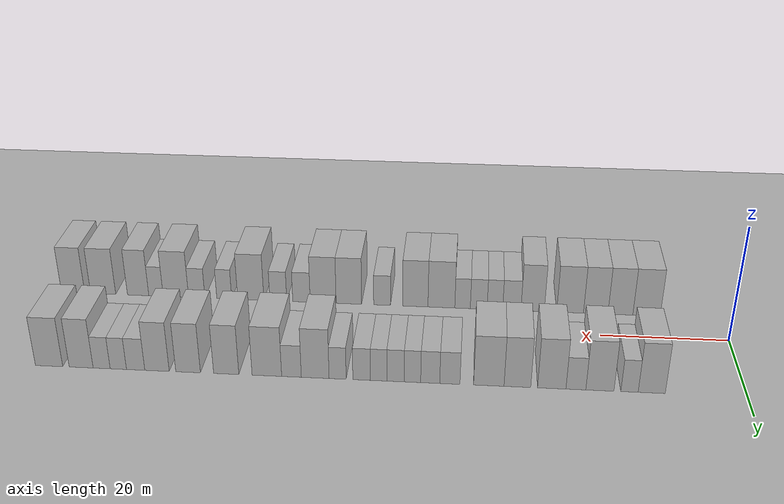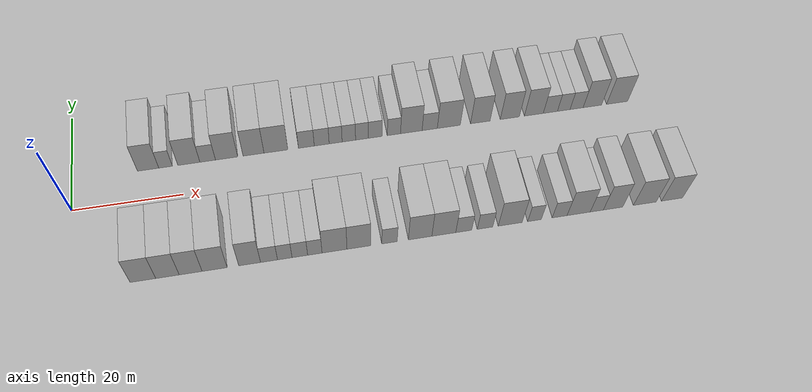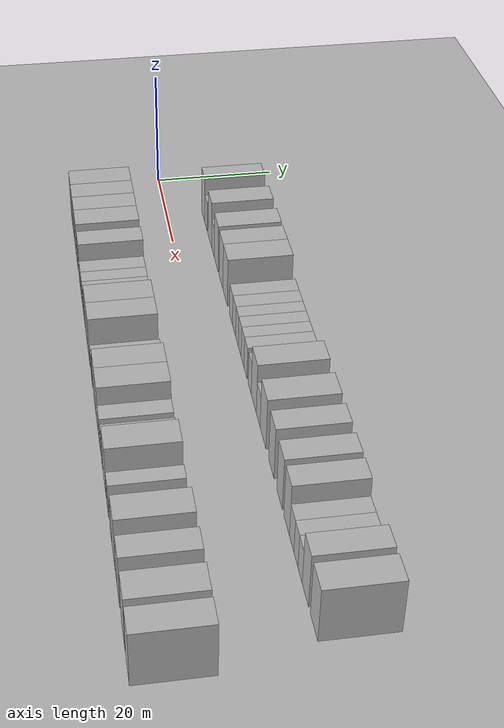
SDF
<sdf version="1.6">
 <world name="default">
  <include><name>ground_plane_1</name><uri>model://HANNAS_ground_plane</uri></include>
  <include>
   <name>ground_plane_2</name>
   <uri>model://HANNAS_ground_plane</uri>
   <pose>100 0 0  0 0 0</pose>
  </include>
  <model name="building_1">
   <static>1</static>
   <pose>13.9510 11.0000 0 0.000000 0.000000 1.570796</pose>
   <link name="link">
    <pose>0 0 4.50 0 0 0</pose>
    <collision name="collision"><geometry><box><size>10.0000 3.9020 9.0000</size></box></geometry></collision>
    <visual name="visual">
     <cast_shadows>0</cast_shadows>
     <geometry><box><size>10.0000 3.9020 9.0000</size></box></geometry>
     <material>
      <script>
       <uri>model://HANNAS_wall/materials/scripts</uri>
       <uri>model://HANNAS_wall/materials/textures</uri>
       <name>vrc/HANNAS_wall</name>
      </script>
     </material>
    </visual>
   </link>
  </model>
  <model name="building_2">
   <static>1</static>
   <pose>17.1490 11.0000 0 0.000000 0.000000 1.570796</pose>
   <link name="link">
    <pose>0 0 3.00 0 0 0</pose>
    <collision name="collision"><geometry><box><size>10.0000 2.4941 6.0000</size></box></geometry></collision>
    <visual name="visual">
     <cast_shadows>0</cast_shadows>
     <geometry><box><size>10.0000 2.4941 6.0000</size></box></geometry>
     <material>
      <script>
       <uri>model://HANNAS_wall/materials/scripts</uri>
       <uri>model://HANNAS_wall/materials/textures</uri>
       <name>vrc/HANNAS_wall</name>
      </script>
     </material>
    </visual>
   </link>
  </model>
  <model name="building_3">
   <static>1</static>
   <pose>21.4325 11.0000 0 0.000000 0.000000 1.570796</pose>
   <link name="link">
    <pose>0 0 4.50 0 0 0</pose>
    <collision name="collision"><geometry><box><size>10.0000 4.0729 9.0000</size></box></geometry></collision>
    <visual name="visual">
     <cast_shadows>0</cast_shadows>
     <geometry><box><size>10.0000 4.0729 9.0000</size></box></geometry>
     <material>
      <script>
       <uri>model://HANNAS_wall/materials/scripts</uri>
       <uri>model://HANNAS_wall/materials/textures</uri>
       <name>vrc/HANNAS_wall</name>
      </script>
     </material>
    </visual>
   </link>
  </model>
  <model name="building_4">
   <static>1</static>
   <pose>24.9111 11.0000 0 0.000000 0.000000 1.570796</pose>
   <link name="link">
    <pose>0 0 3.00 0 0 0</pose>
    <collision name="collision"><geometry><box><size>10.0000 2.8844 6.0000</size></box></geometry></collision>
    <visual name="visual">
     <cast_shadows>0</cast_shadows>
     <geometry><box><size>10.0000 2.8844 6.0000</size></box></geometry>
     <material>
      <script>
       <uri>model://HANNAS_wall/materials/scripts</uri>
       <uri>model://HANNAS_wall/materials/textures</uri>
       <name>vrc/HANNAS_wall</name>
      </script>
     </material>
    </visual>
   </link>
  </model>
  <model name="building_5">
   <static>1</static>
   <pose>28.4173 11.0000 0 0.000000 0.000000 1.570796</pose>
   <link name="link">
    <pose>0 0 4.50 0 0 0</pose>
    <collision name="collision"><geometry><box><size>10.0000 4.1281 9.0000</size></box></geometry></collision>
    <visual name="visual">
     <cast_shadows>0</cast_shadows>
     <geometry><box><size>10.0000 4.1281 9.0000</size></box></geometry>
     <material>
      <script>
       <uri>model://HANNAS_wall/materials/scripts</uri>
       <uri>model://HANNAS_wall/materials/textures</uri>
       <name>vrc/HANNAS_wall</name>
      </script>
     </material>
    </visual>
   </link>
  </model>
  <model name="building_6">
   <static>1</static>
   <pose>33.4345 11.0000 0 0.000000 0.000000 1.570796</pose>
   <link name="link">
    <pose>0 0 4.50 0 0 0</pose>
    <collision name="collision"><geometry><box><size>10.0000 3.9062 9.0000</size></box></geometry></collision>
    <visual name="visual">
     <cast_shadows>0</cast_shadows>
     <geometry><box><size>10.0000 3.9062 9.0000</size></box></geometry>
     <material>
      <script>
       <uri>model://HANNAS_wall/materials/scripts</uri>
       <uri>model://HANNAS_wall/materials/textures</uri>
       <name>vrc/HANNAS_wall</name>
      </script>
     </material>
    </visual>
   </link>
  </model>
  <model name="building_7">
   <static>1</static>
   <pose>37.6217 11.0000 0 0.000000 0.000000 1.570796</pose>
   <link name="link">
    <pose>0 0 4.50 0 0 0</pose>
    <collision name="collision"><geometry><box><size>10.0000 4.4682 9.0000</size></box></geometry></collision>
    <visual name="visual">
     <cast_shadows>0</cast_shadows>
     <geometry><box><size>10.0000 4.4682 9.0000</size></box></geometry>
     <material>
      <script>
       <uri>model://HANNAS_wall/materials/scripts</uri>
       <uri>model://HANNAS_wall/materials/textures</uri>
       <name>vrc/HANNAS_wall</name>
      </script>
     </material>
    </visual>
   </link>
  </model>
  <model name="building_8">
   <static>1</static>
   <pose>43.3466 11.0000 0 0.000000 0.000000 1.570796</pose>
   <link name="link">
    <pose>0 0 3.00 0 0 0</pose>
    <collision name="collision"><geometry><box><size>10.0000 2.9816 6.0000</size></box></geometry></collision>
    <visual name="visual">
     <cast_shadows>0</cast_shadows>
     <geometry><box><size>10.0000 2.9816 6.0000</size></box></geometry>
     <material>
      <script>
       <uri>model://HANNAS_wall/materials/scripts</uri>
       <uri>model://HANNAS_wall/materials/textures</uri>
       <name>vrc/HANNAS_wall</name>
      </script>
     </material>
    </visual>
   </link>
  </model>
  <model name="building_9">
   <static>1</static>
   <pose>46.2434 11.0000 0 0.000000 0.000000 1.570796</pose>
   <link name="link">
    <pose>0 0 3.00 0 0 0</pose>
    <collision name="collision"><geometry><box><size>10.0000 2.8121 6.0000</size></box></geometry></collision>
    <visual name="visual">
     <cast_shadows>0</cast_shadows>
     <geometry><box><size>10.0000 2.8121 6.0000</size></box></geometry>
     <material>
      <script>
       <uri>model://HANNAS_wall/materials/scripts</uri>
       <uri>model://HANNAS_wall/materials/textures</uri>
       <name>vrc/HANNAS_wall</name>
      </script>
     </material>
    </visual>
   </link>
  </model>
  <model name="building_10">
   <static>1</static>
   <pose>48.8798 11.0000 0 0.000000 0.000000 1.570796</pose>
   <link name="link">
    <pose>0 0 3.00 0 0 0</pose>
    <collision name="collision"><geometry><box><size>10.0000 2.4606 6.0000</size></box></geometry></collision>
    <visual name="visual">
     <cast_shadows>0</cast_shadows>
     <geometry><box><size>10.0000 2.4606 6.0000</size></box></geometry>
     <material>
      <script>
       <uri>model://HANNAS_wall/materials/scripts</uri>
       <uri>model://HANNAS_wall/materials/textures</uri>
       <name>vrc/HANNAS_wall</name>
      </script>
     </material>
    </visual>
   </link>
  </model>
  <model name="building_11">
   <static>1</static>
   <pose>51.3890 11.0000 0 0.000000 0.000000 1.570796</pose>
   <link name="link">
    <pose>0 0 3.00 0 0 0</pose>
    <collision name="collision"><geometry><box><size>10.0000 2.5578 6.0000</size></box></geometry></collision>
    <visual name="visual">
     <cast_shadows>0</cast_shadows>
     <geometry><box><size>10.0000 2.5578 6.0000</size></box></geometry>
     <material>
      <script>
       <uri>model://HANNAS_wall/materials/scripts</uri>
       <uri>model://HANNAS_wall/materials/textures</uri>
       <name>vrc/HANNAS_wall</name>
      </script>
     </material>
    </visual>
   </link>
  </model>
  <model name="building_12">
   <static>1</static>
   <pose>53.8851 11.0000 0 0.000000 0.000000 1.570796</pose>
   <link name="link">
    <pose>0 0 3.00 0 0 0</pose>
    <collision name="collision"><geometry><box><size>10.0000 2.4345 6.0000</size></box></geometry></collision>
    <visual name="visual">
     <cast_shadows>0</cast_shadows>
     <geometry><box><size>10.0000 2.4345 6.0000</size></box></geometry>
     <material>
      <script>
       <uri>model://HANNAS_wall/materials/scripts</uri>
       <uri>model://HANNAS_wall/materials/textures</uri>
       <name>vrc/HANNAS_wall</name>
      </script>
     </material>
    </visual>
   </link>
  </model>
  <model name="building_13">
   <static>1</static>
   <pose>56.4099 11.0000 0 0.000000 0.000000 1.570796</pose>
   <link name="link">
    <pose>0 0 3.00 0 0 0</pose>
    <collision name="collision"><geometry><box><size>10.0000 2.6151 6.0000</size></box></geometry></collision>
    <visual name="visual">
     <cast_shadows>0</cast_shadows>
     <geometry><box><size>10.0000 2.6151 6.0000</size></box></geometry>
     <material>
      <script>
       <uri>model://HANNAS_wall/materials/scripts</uri>
       <uri>model://HANNAS_wall/materials/textures</uri>
       <name>vrc/HANNAS_wall</name>
      </script>
     </material>
    </visual>
   </link>
  </model>
  <model name="building_14">
   <static>1</static>
   <pose>59.9889 11.0000 0 0.000000 0.000000 1.570796</pose>
   <link name="link">
    <pose>0 0 3.00 0 0 0</pose>
    <collision name="collision"><geometry><box><size>10.0000 2.5429 6.0000</size></box></geometry></collision>
    <visual name="visual">
     <cast_shadows>0</cast_shadows>
     <geometry><box><size>10.0000 2.5429 6.0000</size></box></geometry>
     <material>
      <script>
       <uri>model://HANNAS_wall/materials/scripts</uri>
       <uri>model://HANNAS_wall/materials/textures</uri>
       <name>vrc/HANNAS_wall</name>
      </script>
     </material>
    </visual>
   </link>
  </model>
  <model name="building_15">
   <static>1</static>
   <pose>63.3386 11.0000 0 0.000000 0.000000 1.570796</pose>
   <link name="link">
    <pose>0 0 4.50 0 0 0</pose>
    <collision name="collision"><geometry><box><size>10.0000 4.1566 9.0000</size></box></geometry></collision>
    <visual name="visual">
     <cast_shadows>0</cast_shadows>
     <geometry><box><size>10.0000 4.1566 9.0000</size></box></geometry>
     <material>
      <script>
       <uri>model://HANNAS_wall/materials/scripts</uri>
       <uri>model://HANNAS_wall/materials/textures</uri>
       <name>vrc/HANNAS_wall</name>
      </script>
     </material>
    </visual>
   </link>
  </model>
  <model name="building_16">
   <static>1</static>
   <pose>66.8907 11.0000 0 0.000000 0.000000 1.570796</pose>
   <link name="link">
    <pose>0 0 3.00 0 0 0</pose>
    <collision name="collision"><geometry><box><size>10.0000 2.9475 6.0000</size></box></geometry></collision>
    <visual name="visual">
     <cast_shadows>0</cast_shadows>
     <geometry><box><size>10.0000 2.9475 6.0000</size></box></geometry>
     <material>
      <script>
       <uri>model://HANNAS_wall/materials/scripts</uri>
       <uri>model://HANNAS_wall/materials/textures</uri>
       <name>vrc/HANNAS_wall</name>
      </script>
     </material>
    </visual>
   </link>
  </model>
  <model name="building_17">
   <static>1</static>
   <pose>70.5925 11.0000 0 0.000000 0.000000 1.570796</pose>
   <link name="link">
    <pose>0 0 4.50 0 0 0</pose>
    <collision name="collision"><geometry><box><size>10.0000 4.4562 9.0000</size></box></geometry></collision>
    <visual name="visual">
     <cast_shadows>0</cast_shadows>
     <geometry><box><size>10.0000 4.4562 9.0000</size></box></geometry>
     <material>
      <script>
       <uri>model://HANNAS_wall/materials/scripts</uri>
       <uri>model://HANNAS_wall/materials/textures</uri>
       <name>vrc/HANNAS_wall</name>
      </script>
     </material>
    </visual>
   </link>
  </model>
  <model name="building_18">
   <static>1</static>
   <pose>76.7253 11.0000 0 0.000000 0.000000 1.570796</pose>
   <link name="link">
    <pose>0 0 4.50 0 0 0</pose>
    <collision name="collision"><geometry><box><size>10.0000 3.8095 9.0000</size></box></geometry></collision>
    <visual name="visual">
     <cast_shadows>0</cast_shadows>
     <geometry><box><size>10.0000 3.8095 9.0000</size></box></geometry>
     <material>
      <script>
       <uri>model://HANNAS_wall/materials/scripts</uri>
       <uri>model://HANNAS_wall/materials/textures</uri>
       <name>vrc/HANNAS_wall</name>
      </script>
     </material>
    </visual>
   </link>
  </model>
  <model name="building_19">
   <static>1</static>
   <pose>82.5011 11.0000 0 0.000000 0.000000 1.570796</pose>
   <link name="link">
    <pose>0 0 4.50 0 0 0</pose>
    <collision name="collision"><geometry><box><size>10.0000 3.7421 9.0000</size></box></geometry></collision>
    <visual name="visual">
     <cast_shadows>0</cast_shadows>
     <geometry><box><size>10.0000 3.7421 9.0000</size></box></geometry>
     <material>
      <script>
       <uri>model://HANNAS_wall/materials/scripts</uri>
       <uri>model://HANNAS_wall/materials/textures</uri>
       <name>vrc/HANNAS_wall</name>
      </script>
     </material>
    </visual>
   </link>
  </model>
  <model name="building_20">
   <static>1</static>
   <pose>87.2350 11.0000 0 0.000000 0.000000 1.570796</pose>
   <link name="link">
    <pose>0 0 4.50 0 0 0</pose>
    <collision name="collision"><geometry><box><size>10.0000 3.7256 9.0000</size></box></geometry></collision>
    <visual name="visual">
     <cast_shadows>0</cast_shadows>
     <geometry><box><size>10.0000 3.7256 9.0000</size></box></geometry>
     <material>
      <script>
       <uri>model://HANNAS_wall/materials/scripts</uri>
       <uri>model://HANNAS_wall/materials/textures</uri>
       <name>vrc/HANNAS_wall</name>
      </script>
     </material>
    </visual>
   </link>
  </model>
  <model name="building_21">
   <static>1</static>
   <pose>90.4984 11.0000 0 0.000000 0.000000 1.570796</pose>
   <link name="link">
    <pose>0 0 3.00 0 0 0</pose>
    <collision name="collision"><geometry><box><size>10.0000 2.8013 6.0000</size></box></geometry></collision>
    <visual name="visual">
     <cast_shadows>0</cast_shadows>
     <geometry><box><size>10.0000 2.8013 6.0000</size></box></geometry>
     <material>
      <script>
       <uri>model://HANNAS_wall/materials/scripts</uri>
       <uri>model://HANNAS_wall/materials/textures</uri>
       <name>vrc/HANNAS_wall</name>
      </script>
     </material>
    </visual>
   </link>
  </model>
  <model name="building_22">
   <static>1</static>
   <pose>93.1479 11.0000 0 0.000000 0.000000 1.570796</pose>
   <link name="link">
    <pose>0 0 3.00 0 0 0</pose>
    <collision name="collision"><geometry><box><size>10.0000 2.4976 6.0000</size></box></geometry></collision>
    <visual name="visual">
     <cast_shadows>0</cast_shadows>
     <geometry><box><size>10.0000 2.4976 6.0000</size></box></geometry>
     <material>
      <script>
       <uri>model://HANNAS_wall/materials/scripts</uri>
       <uri>model://HANNAS_wall/materials/textures</uri>
       <name>vrc/HANNAS_wall</name>
      </script>
     </material>
    </visual>
   </link>
  </model>
  <model name="building_23">
   <static>1</static>
   <pose>95.7047 11.0000 0 0.000000 0.000000 1.570796</pose>
   <link name="link">
    <pose>0 0 3.00 0 0 0</pose>
    <collision name="collision"><geometry><box><size>10.0000 2.6161 6.0000</size></box></geometry></collision>
    <visual name="visual">
     <cast_shadows>0</cast_shadows>
     <geometry><box><size>10.0000 2.6161 6.0000</size></box></geometry>
     <material>
      <script>
       <uri>model://HANNAS_wall/materials/scripts</uri>
       <uri>model://HANNAS_wall/materials/textures</uri>
       <name>vrc/HANNAS_wall</name>
      </script>
     </material>
    </visual>
   </link>
  </model>
  <model name="building_24">
   <static>1</static>
   <pose>98.8529 11.0000 0 0.000000 0.000000 1.570796</pose>
   <link name="link">
    <pose>0 0 4.50 0 0 0</pose>
    <collision name="collision"><geometry><box><size>10.0000 3.6804 9.0000</size></box></geometry></collision>
    <visual name="visual">
     <cast_shadows>0</cast_shadows>
     <geometry><box><size>10.0000 3.6804 9.0000</size></box></geometry>
     <material>
      <script>
       <uri>model://HANNAS_wall/materials/scripts</uri>
       <uri>model://HANNAS_wall/materials/textures</uri>
       <name>vrc/HANNAS_wall</name>
      </script>
     </material>
    </visual>
   </link>
  </model>
  <model name="building_25">
   <static>1</static>
   <pose>103.8006 11.0000 0 0.000000 0.000000 1.570796</pose>
   <link name="link">
    <pose>0 0 4.50 0 0 0</pose>
    <collision name="collision"><geometry><box><size>10.0000 4.2151 9.0000</size></box></geometry></collision>
    <visual name="visual">
     <cast_shadows>0</cast_shadows>
     <geometry><box><size>10.0000 4.2151 9.0000</size></box></geometry>
     <material>
      <script>
       <uri>model://HANNAS_wall/materials/scripts</uri>
       <uri>model://HANNAS_wall/materials/textures</uri>
       <name>vrc/HANNAS_wall</name>
      </script>
     </material>
    </visual>
   </link>
  </model>
  <model name="building_52">
   <static>1</static>
   <pose>12.1901 -11.0000 0 0.000000 0.000000 1.570796</pose>
   <link name="link">
    <pose>0 0 4.50 0 0 0</pose>
    <collision name="collision"><geometry><box><size>10.0000 4.3803 9.0000</size></box></geometry></collision>
    <visual name="visual">
     <cast_shadows>0</cast_shadows>
     <geometry><box><size>10.0000 4.3803 9.0000</size></box></geometry>
     <material>
      <script>
       <uri>model://HANNAS_wall/materials/scripts</uri>
       <uri>model://HANNAS_wall/materials/textures</uri>
       <name>vrc/HANNAS_wall</name>
      </script>
     </material>
    </visual>
   </link>
  </model>
  <model name="building_53">
   <static>1</static>
   <pose>16.3784 -11.0000 0 0.000000 0.000000 1.570796</pose>
   <link name="link">
    <pose>0 0 4.50 0 0 0</pose>
    <collision name="collision"><geometry><box><size>10.0000 3.9963 9.0000</size></box></geometry></collision>
    <visual name="visual">
     <cast_shadows>0</cast_shadows>
     <geometry><box><size>10.0000 3.9963 9.0000</size></box></geometry>
     <material>
      <script>
       <uri>model://HANNAS_wall/materials/scripts</uri>
       <uri>model://HANNAS_wall/materials/textures</uri>
       <name>vrc/HANNAS_wall</name>
      </script>
     </material>
    </visual>
   </link>
  </model>
  <model name="building_54">
   <static>1</static>
   <pose>20.3444 -11.0000 0 0.000000 0.000000 1.570796</pose>
   <link name="link">
    <pose>0 0 4.50 0 0 0</pose>
    <collision name="collision"><geometry><box><size>10.0000 3.9358 9.0000</size></box></geometry></collision>
    <visual name="visual">
     <cast_shadows>0</cast_shadows>
     <geometry><box><size>10.0000 3.9358 9.0000</size></box></geometry>
     <material>
      <script>
       <uri>model://HANNAS_wall/materials/scripts</uri>
       <uri>model://HANNAS_wall/materials/textures</uri>
       <name>vrc/HANNAS_wall</name>
      </script>
     </material>
    </visual>
   </link>
  </model>
  <model name="building_55">
   <static>1</static>
   <pose>24.4729 -11.0000 0 0.000000 0.000000 1.570796</pose>
   <link name="link">
    <pose>0 0 4.50 0 0 0</pose>
    <collision name="collision"><geometry><box><size>10.0000 4.3211 9.0000</size></box></geometry></collision>
    <visual name="visual">
     <cast_shadows>0</cast_shadows>
     <geometry><box><size>10.0000 4.3211 9.0000</size></box></geometry>
     <material>
      <script>
       <uri>model://HANNAS_wall/materials/scripts</uri>
       <uri>model://HANNAS_wall/materials/textures</uri>
       <name>vrc/HANNAS_wall</name>
      </script>
     </material>
    </visual>
   </link>
  </model>
  <model name="building_56">
   <static>1</static>
   <pose>30.5306 -11.0000 0 0.000000 0.000000 1.570796</pose>
   <link name="link">
    <pose>0 0 4.50 0 0 0</pose>
    <collision name="collision"><geometry><box><size>10.0000 3.7944 9.0000</size></box></geometry></collision>
    <visual name="visual">
     <cast_shadows>0</cast_shadows>
     <geometry><box><size>10.0000 3.7944 9.0000</size></box></geometry>
     <material>
      <script>
       <uri>model://HANNAS_wall/materials/scripts</uri>
       <uri>model://HANNAS_wall/materials/textures</uri>
       <name>vrc/HANNAS_wall</name>
      </script>
     </material>
    </visual>
   </link>
  </model>
  <model name="building_57">
   <static>1</static>
   <pose>33.9113 -11.0000 0 0.000000 0.000000 1.570796</pose>
   <link name="link">
    <pose>0 0 3.00 0 0 0</pose>
    <collision name="collision"><geometry><box><size>10.0000 2.9670 6.0000</size></box></geometry></collision>
    <visual name="visual">
     <cast_shadows>0</cast_shadows>
     <geometry><box><size>10.0000 2.9670 6.0000</size></box></geometry>
     <material>
      <script>
       <uri>model://HANNAS_wall/materials/scripts</uri>
       <uri>model://HANNAS_wall/materials/textures</uri>
       <name>vrc/HANNAS_wall</name>
      </script>
     </material>
    </visual>
   </link>
  </model>
  <model name="building_58">
   <static>1</static>
   <pose>36.6656 -11.0000 0 0.000000 0.000000 1.570796</pose>
   <link name="link">
    <pose>0 0 3.00 0 0 0</pose>
    <collision name="collision"><geometry><box><size>10.0000 2.5414 6.0000</size></box></geometry></collision>
    <visual name="visual">
     <cast_shadows>0</cast_shadows>
     <geometry><box><size>10.0000 2.5414 6.0000</size></box></geometry>
     <material>
      <script>
       <uri>model://HANNAS_wall/materials/scripts</uri>
       <uri>model://HANNAS_wall/materials/textures</uri>
       <name>vrc/HANNAS_wall</name>
      </script>
     </material>
    </visual>
   </link>
  </model>
  <model name="building_59">
   <static>1</static>
   <pose>39.3002 -11.0000 0 0.000000 0.000000 1.570796</pose>
   <link name="link">
    <pose>0 0 3.00 0 0 0</pose>
    <collision name="collision"><geometry><box><size>10.0000 2.7278 6.0000</size></box></geometry></collision>
    <visual name="visual">
     <cast_shadows>0</cast_shadows>
     <geometry><box><size>10.0000 2.7278 6.0000</size></box></geometry>
     <material>
      <script>
       <uri>model://HANNAS_wall/materials/scripts</uri>
       <uri>model://HANNAS_wall/materials/textures</uri>
       <name>vrc/HANNAS_wall</name>
      </script>
     </material>
    </visual>
   </link>
  </model>
  <model name="building_60">
   <static>1</static>
   <pose>41.9310 -11.0000 0 0.000000 0.000000 1.570796</pose>
   <link name="link">
    <pose>0 0 3.00 0 0 0</pose>
    <collision name="collision"><geometry><box><size>10.0000 2.5340 6.0000</size></box></geometry></collision>
    <visual name="visual">
     <cast_shadows>0</cast_shadows>
     <geometry><box><size>10.0000 2.5340 6.0000</size></box></geometry>
     <material>
      <script>
       <uri>model://HANNAS_wall/materials/scripts</uri>
       <uri>model://HANNAS_wall/materials/textures</uri>
       <name>vrc/HANNAS_wall</name>
      </script>
     </material>
    </visual>
   </link>
  </model>
  <model name="building_61">
   <static>1</static>
   <pose>45.3975 -11.0000 0 0.000000 0.000000 1.570796</pose>
   <link name="link">
    <pose>0 0 4.50 0 0 0</pose>
    <collision name="collision"><geometry><box><size>10.0000 4.3991 9.0000</size></box></geometry></collision>
    <visual name="visual">
     <cast_shadows>0</cast_shadows>
     <geometry><box><size>10.0000 4.3991 9.0000</size></box></geometry>
     <material>
      <script>
       <uri>model://HANNAS_wall/materials/scripts</uri>
       <uri>model://HANNAS_wall/materials/textures</uri>
       <name>vrc/HANNAS_wall</name>
      </script>
     </material>
    </visual>
   </link>
  </model>
  <model name="building_62">
   <static>1</static>
   <pose>49.6831 -11.0000 0 0.000000 0.000000 1.570796</pose>
   <link name="link">
    <pose>0 0 4.50 0 0 0</pose>
    <collision name="collision"><geometry><box><size>10.0000 4.1720 9.0000</size></box></geometry></collision>
    <visual name="visual">
     <cast_shadows>0</cast_shadows>
     <geometry><box><size>10.0000 4.1720 9.0000</size></box></geometry>
     <material>
      <script>
       <uri>model://HANNAS_wall/materials/scripts</uri>
       <uri>model://HANNAS_wall/materials/textures</uri>
       <name>vrc/HANNAS_wall</name>
      </script>
     </material>
    </visual>
   </link>
  </model>
  <model name="building_63">
   <static>1</static>
   <pose>55.1499 -11.0000 0 0.000000 0.000000 1.570796</pose>
   <link name="link">
    <pose>0 0 3.00 0 0 0</pose>
    <collision name="collision"><geometry><box><size>10.0000 2.7616 6.0000</size></box></geometry></collision>
    <visual name="visual">
     <cast_shadows>0</cast_shadows>
     <geometry><box><size>10.0000 2.7616 6.0000</size></box></geometry>
     <material>
      <script>
       <uri>model://HANNAS_wall/materials/scripts</uri>
       <uri>model://HANNAS_wall/materials/textures</uri>
       <name>vrc/HANNAS_wall</name>
      </script>
     </material>
    </visual>
   </link>
  </model>
  <model name="building_64">
   <static>1</static>
   <pose>60.6399 -11.0000 0 0.000000 0.000000 1.570796</pose>
   <link name="link">
    <pose>0 0 4.50 0 0 0</pose>
    <collision name="collision"><geometry><box><size>10.0000 4.2185 9.0000</size></box></geometry></collision>
    <visual name="visual">
     <cast_shadows>0</cast_shadows>
     <geometry><box><size>10.0000 4.2185 9.0000</size></box></geometry>
     <material>
      <script>
       <uri>model://HANNAS_wall/materials/scripts</uri>
       <uri>model://HANNAS_wall/materials/textures</uri>
       <name>vrc/HANNAS_wall</name>
      </script>
     </material>
    </visual>
   </link>
  </model>
  <model name="building_65">
   <static>1</static>
   <pose>64.9015 -11.0000 0 0.000000 0.000000 1.570796</pose>
   <link name="link">
    <pose>0 0 4.50 0 0 0</pose>
    <collision name="collision"><geometry><box><size>10.0000 4.3046 9.0000</size></box></geometry></collision>
    <visual name="visual">
     <cast_shadows>0</cast_shadows>
     <geometry><box><size>10.0000 4.3046 9.0000</size></box></geometry>
     <material>
      <script>
       <uri>model://HANNAS_wall/materials/scripts</uri>
       <uri>model://HANNAS_wall/materials/textures</uri>
       <name>vrc/HANNAS_wall</name>
      </script>
     </material>
    </visual>
   </link>
  </model>
  <model name="building_66">
   <static>1</static>
   <pose>68.5039 -11.0000 0 0.000000 0.000000 1.570796</pose>
   <link name="link">
    <pose>0 0 3.00 0 0 0</pose>
    <collision name="collision"><geometry><box><size>10.0000 2.9003 6.0000</size></box></geometry></collision>
    <visual name="visual">
     <cast_shadows>0</cast_shadows>
     <geometry><box><size>10.0000 2.9003 6.0000</size></box></geometry>
     <material>
      <script>
       <uri>model://HANNAS_wall/materials/scripts</uri>
       <uri>model://HANNAS_wall/materials/textures</uri>
       <name>vrc/HANNAS_wall</name>
      </script>
     </material>
    </visual>
   </link>
  </model>
  <model name="building_67">
   <static>1</static>
   <pose>72.3628 -11.0000 0 0.000000 0.000000 1.570796</pose>
   <link name="link">
    <pose>0 0 3.00 0 0 0</pose>
    <collision name="collision"><geometry><box><size>10.0000 2.8173 6.0000</size></box></geometry></collision>
    <visual name="visual">
     <cast_shadows>0</cast_shadows>
     <geometry><box><size>10.0000 2.8173 6.0000</size></box></geometry>
     <material>
      <script>
       <uri>model://HANNAS_wall/materials/scripts</uri>
       <uri>model://HANNAS_wall/materials/textures</uri>
       <name>vrc/HANNAS_wall</name>
      </script>
     </material>
    </visual>
   </link>
  </model>
  <model name="building_68">
   <static>1</static>
   <pose>76.9639 -11.0000 0 0.000000 0.000000 1.570796</pose>
   <link name="link">
    <pose>0 0 4.50 0 0 0</pose>
    <collision name="collision"><geometry><box><size>10.0000 4.3849 9.0000</size></box></geometry></collision>
    <visual name="visual">
     <cast_shadows>0</cast_shadows>
     <geometry><box><size>10.0000 4.3849 9.0000</size></box></geometry>
     <material>
      <script>
       <uri>model://HANNAS_wall/materials/scripts</uri>
       <uri>model://HANNAS_wall/materials/textures</uri>
       <name>vrc/HANNAS_wall</name>
      </script>
     </material>
    </visual>
   </link>
  </model>
  <model name="building_69">
   <static>1</static>
   <pose>81.4125 -11.0000 0 0.000000 0.000000 1.570796</pose>
   <link name="link">
    <pose>0 0 3.00 0 0 0</pose>
    <collision name="collision"><geometry><box><size>10.0000 2.5124 6.0000</size></box></geometry></collision>
    <visual name="visual">
     <cast_shadows>0</cast_shadows>
     <geometry><box><size>10.0000 2.5124 6.0000</size></box></geometry>
     <material>
      <script>
       <uri>model://HANNAS_wall/materials/scripts</uri>
       <uri>model://HANNAS_wall/materials/textures</uri>
       <name>vrc/HANNAS_wall</name>
      </script>
     </material>
    </visual>
   </link>
  </model>
  <model name="building_70">
   <static>1</static>
   <pose>86.0426 -11.0000 0 0.000000 0.000000 1.570796</pose>
   <link name="link">
    <pose>0 0 3.00 0 0 0</pose>
    <collision name="collision"><geometry><box><size>10.0000 2.7478 6.0000</size></box></geometry></collision>
    <visual name="visual">
     <cast_shadows>0</cast_shadows>
     <geometry><box><size>10.0000 2.7478 6.0000</size></box></geometry>
     <material>
      <script>
       <uri>model://HANNAS_wall/materials/scripts</uri>
       <uri>model://HANNAS_wall/materials/textures</uri>
       <name>vrc/HANNAS_wall</name>
      </script>
     </material>
    </visual>
   </link>
  </model>
  <model name="building_71">
   <static>1</static>
   <pose>89.5666 -11.0000 0 0.000000 0.000000 1.570796</pose>
   <link name="link">
    <pose>0 0 4.50 0 0 0</pose>
    <collision name="collision"><geometry><box><size>10.0000 4.3002 9.0000</size></box></geometry></collision>
    <visual name="visual">
     <cast_shadows>0</cast_shadows>
     <geometry><box><size>10.0000 4.3002 9.0000</size></box></geometry>
     <material>
      <script>
       <uri>model://HANNAS_wall/materials/scripts</uri>
       <uri>model://HANNAS_wall/materials/textures</uri>
       <name>vrc/HANNAS_wall</name>
      </script>
     </material>
    </visual>
   </link>
  </model>
  <model name="building_72">
   <static>1</static>
   <pose>92.9340 -11.0000 0 0.000000 0.000000 1.570796</pose>
   <link name="link">
    <pose>0 0 3.00 0 0 0</pose>
    <collision name="collision"><geometry><box><size>10.0000 2.4345 6.0000</size></box></geometry></collision>
    <visual name="visual">
     <cast_shadows>0</cast_shadows>
     <geometry><box><size>10.0000 2.4345 6.0000</size></box></geometry>
     <material>
      <script>
       <uri>model://HANNAS_wall/materials/scripts</uri>
       <uri>model://HANNAS_wall/materials/textures</uri>
       <name>vrc/HANNAS_wall</name>
      </script>
     </material>
    </visual>
   </link>
  </model>
  <model name="building_73">
   <static>1</static>
   <pose>95.9624 -11.0000 0 0.000000 0.000000 1.570796</pose>
   <link name="link">
    <pose>0 0 4.50 0 0 0</pose>
    <collision name="collision"><geometry><box><size>10.0000 3.6225 9.0000</size></box></geometry></collision>
    <visual name="visual">
     <cast_shadows>0</cast_shadows>
     <geometry><box><size>10.0000 3.6225 9.0000</size></box></geometry>
     <material>
      <script>
       <uri>model://HANNAS_wall/materials/scripts</uri>
       <uri>model://HANNAS_wall/materials/textures</uri>
       <name>vrc/HANNAS_wall</name>
      </script>
     </material>
    </visual>
   </link>
  </model>
  <model name="building_74">
   <static>1</static>
   <pose>101.9149 -11.0000 0 0.000000 0.000000 1.570796</pose>
   <link name="link">
    <pose>0 0 4.50 0 0 0</pose>
    <collision name="collision"><geometry><box><size>10.0000 4.2823 9.0000</size></box></geometry></collision>
    <visual name="visual">
     <cast_shadows>0</cast_shadows>
     <geometry><box><size>10.0000 4.2823 9.0000</size></box></geometry>
     <material>
      <script>
       <uri>model://HANNAS_wall/materials/scripts</uri>
       <uri>model://HANNAS_wall/materials/textures</uri>
       <name>vrc/HANNAS_wall</name>
      </script>
     </material>
    </visual>
   </link>
  </model>
  <model name="building_75">
   <static>1</static>
   <pose>107.0439 -11.0000 0 0.000000 0.000000 1.570796</pose>
   <link name="link">
    <pose>0 0 4.50 0 0 0</pose>
    <collision name="collision"><geometry><box><size>10.0000 3.9757 9.0000</size></box></geometry></collision>
    <visual name="visual">
     <cast_shadows>0</cast_shadows>
     <geometry><box><size>10.0000 3.9757 9.0000</size></box></geometry>
     <material>
      <script>
       <uri>model://HANNAS_wall/materials/scripts</uri>
       <uri>model://HANNAS_wall/materials/textures</uri>
       <name>vrc/HANNAS_wall</name>
      </script>
     </material>
    </visual>
   </link>
  </model>
 </world>
</sdf>
